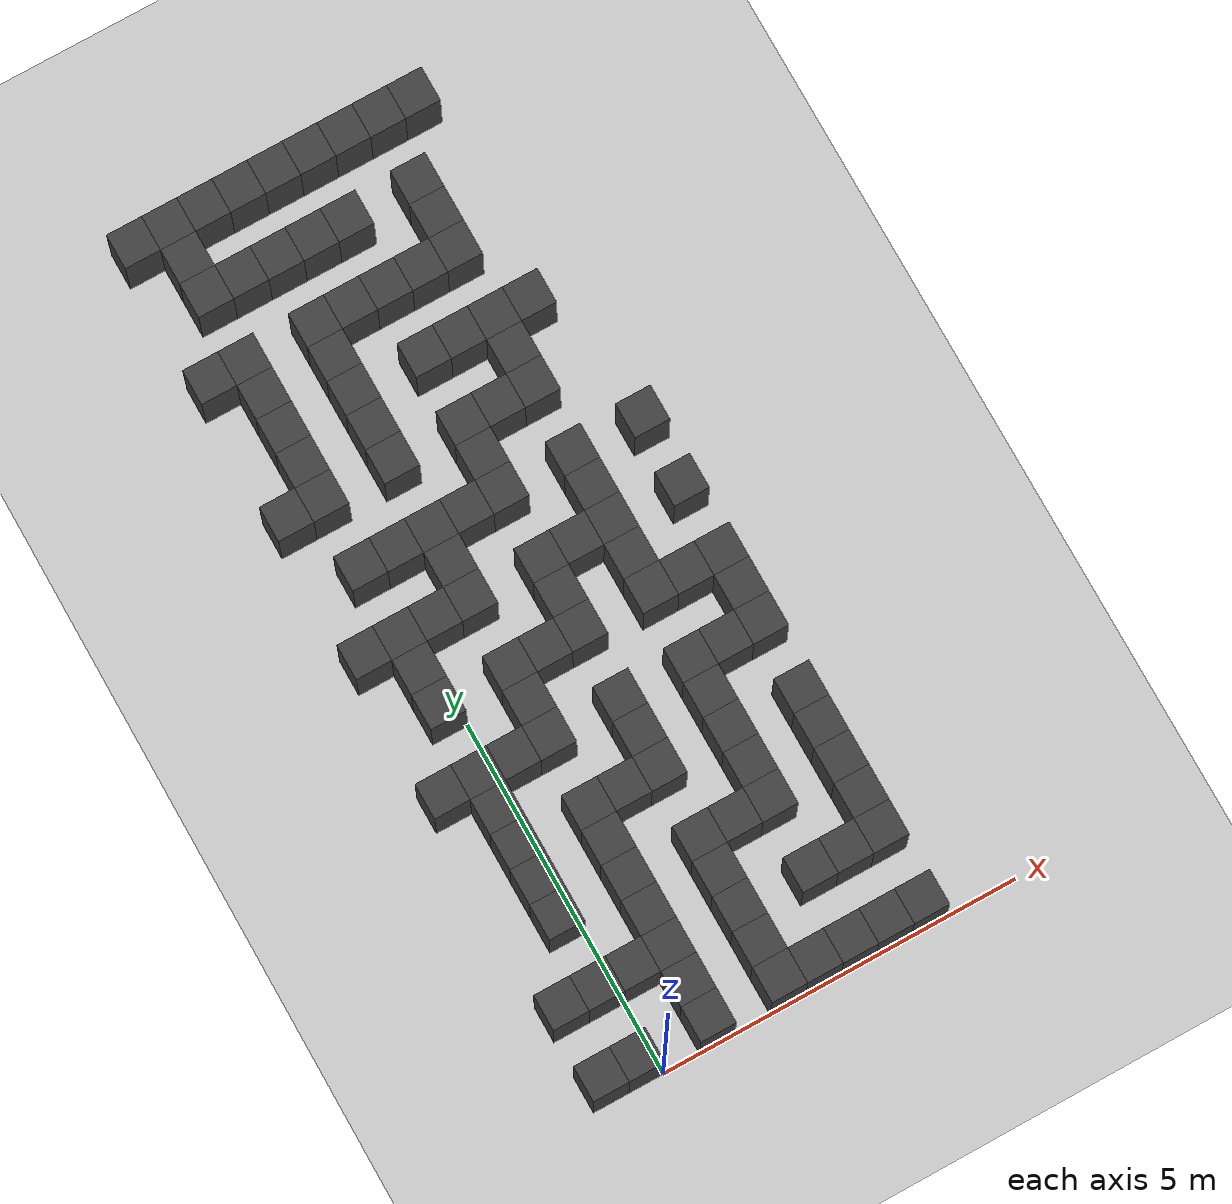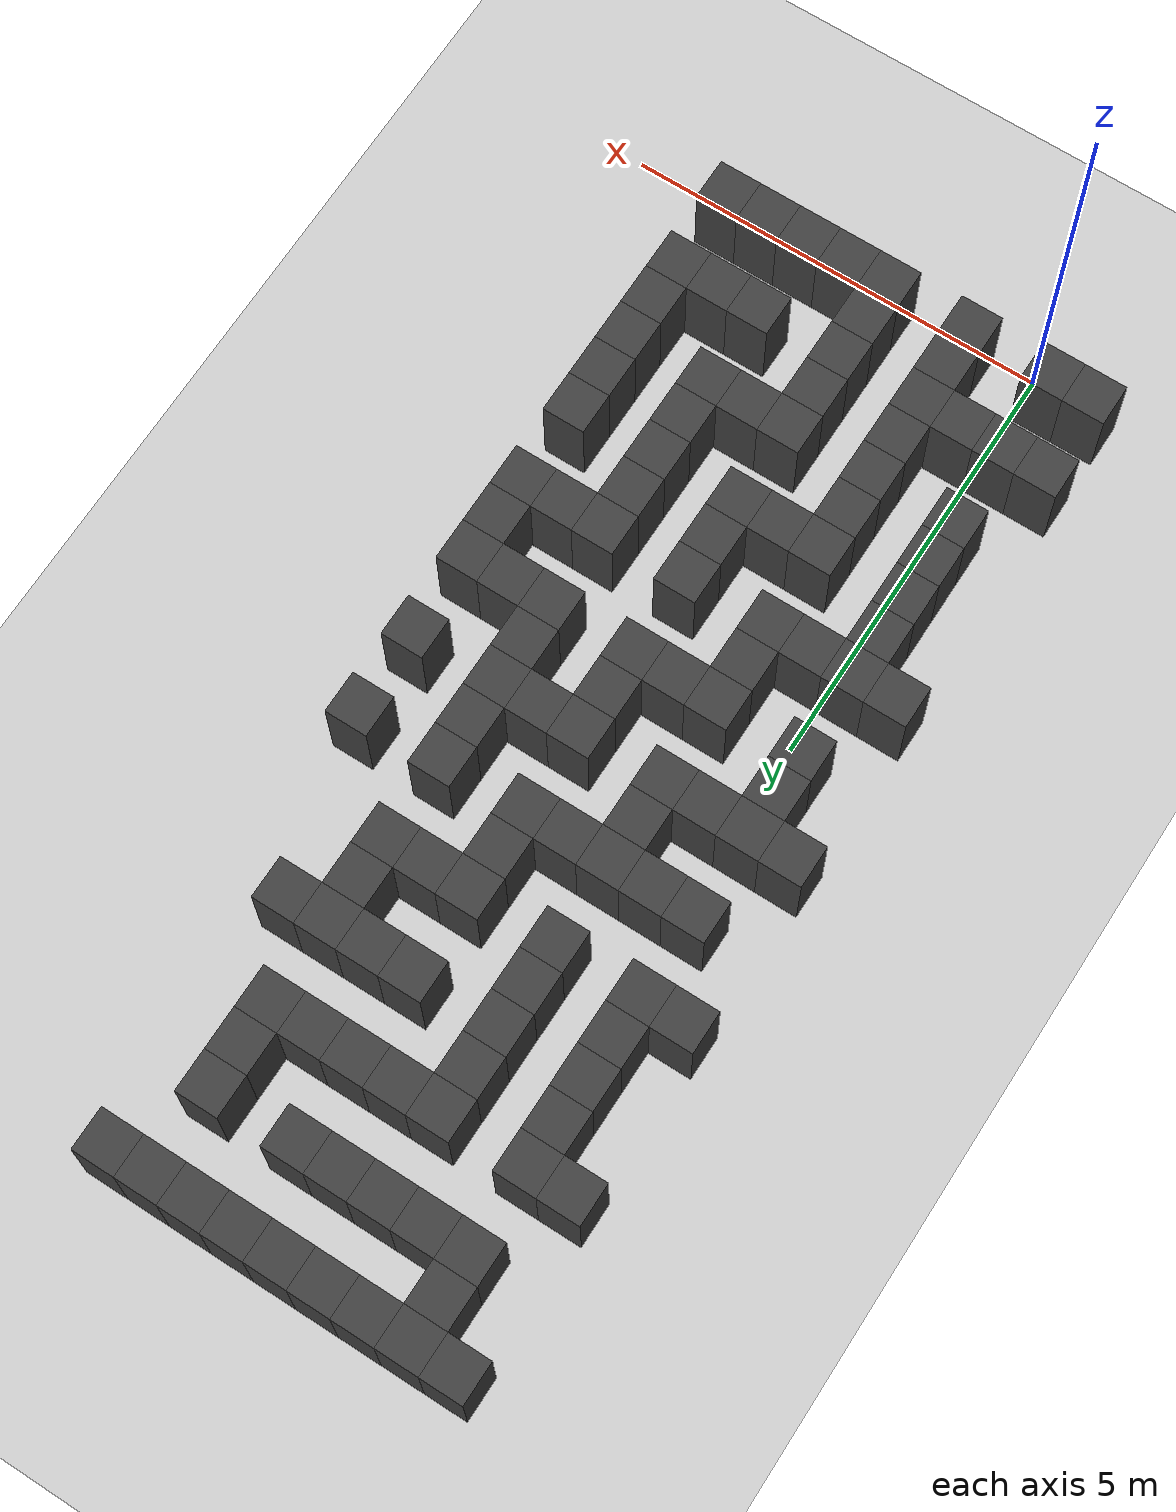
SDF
<sdf version="1.7">
 <world name="map_18505">
  <model name="ground_plane">
   <static>true</static>
   <link name="link">
    <collision name="collision">
     <geometry><plane><normal>0 0 1</normal><size>200 200</size></plane></geometry>
    </collision>
    <visual name="visual">
     <geometry><plane><normal>0 0 1</normal><size>200 200</size></plane></geometry>
     <material><ambient>0.8 0.8 0.8 1</ambient><diffuse>0.8 0.8 0.8 1</diffuse></material>
    </visual>
   </link>
  </model>
  <model name="maze_environment">
   <static>true</static>
   <link name="wall_23">
    <pose>-0.750 12.250 0.500 0 0 0</pose>
    <collision name="col"><geometry><box><size>0.5 0.5 1.0</size></box></geometry></collision>
    <visual name="vis">
     <geometry><box><size>0.5 0.5 1.0</size></box></geometry>
     <material><ambient>0.15 0.15 0.15 1</ambient><diffuse>0.25 0.25 0.25 1</diffuse></material>
    </visual>
   </link>
   <link name="wall_24">
    <pose>-0.250 12.250 0.500 0 0 0</pose>
    <collision name="col"><geometry><box><size>0.5 0.5 1.0</size></box></geometry></collision>
    <visual name="vis">
     <geometry><box><size>0.5 0.5 1.0</size></box></geometry>
     <material><ambient>0.15 0.15 0.15 1</ambient><diffuse>0.25 0.25 0.25 1</diffuse></material>
    </visual>
   </link>
   <link name="wall_25">
    <pose>0.250 12.250 0.500 0 0 0</pose>
    <collision name="col"><geometry><box><size>0.5 0.5 1.0</size></box></geometry></collision>
    <visual name="vis">
     <geometry><box><size>0.5 0.5 1.0</size></box></geometry>
     <material><ambient>0.15 0.15 0.15 1</ambient><diffuse>0.25 0.25 0.25 1</diffuse></material>
    </visual>
   </link>
   <link name="wall_26">
    <pose>0.750 12.250 0.500 0 0 0</pose>
    <collision name="col"><geometry><box><size>0.5 0.5 1.0</size></box></geometry></collision>
    <visual name="vis">
     <geometry><box><size>0.5 0.5 1.0</size></box></geometry>
     <material><ambient>0.15 0.15 0.15 1</ambient><diffuse>0.25 0.25 0.25 1</diffuse></material>
    </visual>
   </link>
   <link name="wall_27">
    <pose>1.250 12.250 0.500 0 0 0</pose>
    <collision name="col"><geometry><box><size>0.5 0.5 1.0</size></box></geometry></collision>
    <visual name="vis">
     <geometry><box><size>0.5 0.5 1.0</size></box></geometry>
     <material><ambient>0.15 0.15 0.15 1</ambient><diffuse>0.25 0.25 0.25 1</diffuse></material>
    </visual>
   </link>
   <link name="wall_28">
    <pose>1.750 12.250 0.500 0 0 0</pose>
    <collision name="col"><geometry><box><size>0.5 0.5 1.0</size></box></geometry></collision>
    <visual name="vis">
     <geometry><box><size>0.5 0.5 1.0</size></box></geometry>
     <material><ambient>0.15 0.15 0.15 1</ambient><diffuse>0.25 0.25 0.25 1</diffuse></material>
    </visual>
   </link>
   <link name="wall_29">
    <pose>2.250 12.250 0.500 0 0 0</pose>
    <collision name="col"><geometry><box><size>0.5 0.5 1.0</size></box></geometry></collision>
    <visual name="vis">
     <geometry><box><size>0.5 0.5 1.0</size></box></geometry>
     <material><ambient>0.15 0.15 0.15 1</ambient><diffuse>0.25 0.25 0.25 1</diffuse></material>
    </visual>
   </link>
   <link name="wall_30">
    <pose>2.750 12.250 0.500 0 0 0</pose>
    <collision name="col"><geometry><box><size>0.5 0.5 1.0</size></box></geometry></collision>
    <visual name="vis">
     <geometry><box><size>0.5 0.5 1.0</size></box></geometry>
     <material><ambient>0.15 0.15 0.15 1</ambient><diffuse>0.25 0.25 0.25 1</diffuse></material>
    </visual>
   </link>
   <link name="wall_31">
    <pose>3.250 12.250 0.500 0 0 0</pose>
    <collision name="col"><geometry><box><size>0.5 0.5 1.0</size></box></geometry></collision>
    <visual name="vis">
     <geometry><box><size>0.5 0.5 1.0</size></box></geometry>
     <material><ambient>0.15 0.15 0.15 1</ambient><diffuse>0.25 0.25 0.25 1</diffuse></material>
    </visual>
   </link>
   <link name="wall_54">
    <pose>-0.250 11.750 0.500 0 0 0</pose>
    <collision name="col"><geometry><box><size>0.5 0.5 1.0</size></box></geometry></collision>
    <visual name="vis">
     <geometry><box><size>0.5 0.5 1.0</size></box></geometry>
     <material><ambient>0.15 0.15 0.15 1</ambient><diffuse>0.25 0.25 0.25 1</diffuse></material>
    </visual>
   </link>
   <link name="wall_75">
    <pose>-0.250 11.250 0.500 0 0 0</pose>
    <collision name="col"><geometry><box><size>0.5 0.5 1.0</size></box></geometry></collision>
    <visual name="vis">
     <geometry><box><size>0.5 0.5 1.0</size></box></geometry>
     <material><ambient>0.15 0.15 0.15 1</ambient><diffuse>0.25 0.25 0.25 1</diffuse></material>
    </visual>
   </link>
   <link name="wall_76">
    <pose>0.250 11.250 0.500 0 0 0</pose>
    <collision name="col"><geometry><box><size>0.5 0.5 1.0</size></box></geometry></collision>
    <visual name="vis">
     <geometry><box><size>0.5 0.5 1.0</size></box></geometry>
     <material><ambient>0.15 0.15 0.15 1</ambient><diffuse>0.25 0.25 0.25 1</diffuse></material>
    </visual>
   </link>
   <link name="wall_77">
    <pose>0.750 11.250 0.500 0 0 0</pose>
    <collision name="col"><geometry><box><size>0.5 0.5 1.0</size></box></geometry></collision>
    <visual name="vis">
     <geometry><box><size>0.5 0.5 1.0</size></box></geometry>
     <material><ambient>0.15 0.15 0.15 1</ambient><diffuse>0.25 0.25 0.25 1</diffuse></material>
    </visual>
   </link>
   <link name="wall_78">
    <pose>1.250 11.250 0.500 0 0 0</pose>
    <collision name="col"><geometry><box><size>0.5 0.5 1.0</size></box></geometry></collision>
    <visual name="vis">
     <geometry><box><size>0.5 0.5 1.0</size></box></geometry>
     <material><ambient>0.15 0.15 0.15 1</ambient><diffuse>0.25 0.25 0.25 1</diffuse></material>
    </visual>
   </link>
   <link name="wall_79">
    <pose>1.750 11.250 0.500 0 0 0</pose>
    <collision name="col"><geometry><box><size>0.5 0.5 1.0</size></box></geometry></collision>
    <visual name="vis">
     <geometry><box><size>0.5 0.5 1.0</size></box></geometry>
     <material><ambient>0.15 0.15 0.15 1</ambient><diffuse>0.25 0.25 0.25 1</diffuse></material>
    </visual>
   </link>
   <link name="wall_80">
    <pose>2.750 11.250 0.500 0 0 0</pose>
    <collision name="col"><geometry><box><size>0.5 0.5 1.0</size></box></geometry></collision>
    <visual name="vis">
     <geometry><box><size>0.5 0.5 1.0</size></box></geometry>
     <material><ambient>0.15 0.15 0.15 1</ambient><diffuse>0.25 0.25 0.25 1</diffuse></material>
    </visual>
   </link>
   <link name="wall_102">
    <pose>2.750 10.750 0.500 0 0 0</pose>
    <collision name="col"><geometry><box><size>0.5 0.5 1.0</size></box></geometry></collision>
    <visual name="vis">
     <geometry><box><size>0.5 0.5 1.0</size></box></geometry>
     <material><ambient>0.15 0.15 0.15 1</ambient><diffuse>0.25 0.25 0.25 1</diffuse></material>
    </visual>
   </link>
   <link name="wall_125">
    <pose>-0.750 10.250 0.500 0 0 0</pose>
    <collision name="col"><geometry><box><size>0.5 0.5 1.0</size></box></geometry></collision>
    <visual name="vis">
     <geometry><box><size>0.5 0.5 1.0</size></box></geometry>
     <material><ambient>0.15 0.15 0.15 1</ambient><diffuse>0.25 0.25 0.25 1</diffuse></material>
    </visual>
   </link>
   <link name="wall_126">
    <pose>-0.250 10.250 0.500 0 0 0</pose>
    <collision name="col"><geometry><box><size>0.5 0.5 1.0</size></box></geometry></collision>
    <visual name="vis">
     <geometry><box><size>0.5 0.5 1.0</size></box></geometry>
     <material><ambient>0.15 0.15 0.15 1</ambient><diffuse>0.25 0.25 0.25 1</diffuse></material>
    </visual>
   </link>
   <link name="wall_127">
    <pose>0.750 10.250 0.500 0 0 0</pose>
    <collision name="col"><geometry><box><size>0.5 0.5 1.0</size></box></geometry></collision>
    <visual name="vis">
     <geometry><box><size>0.5 0.5 1.0</size></box></geometry>
     <material><ambient>0.15 0.15 0.15 1</ambient><diffuse>0.25 0.25 0.25 1</diffuse></material>
    </visual>
   </link>
   <link name="wall_128">
    <pose>1.250 10.250 0.500 0 0 0</pose>
    <collision name="col"><geometry><box><size>0.5 0.5 1.0</size></box></geometry></collision>
    <visual name="vis">
     <geometry><box><size>0.5 0.5 1.0</size></box></geometry>
     <material><ambient>0.15 0.15 0.15 1</ambient><diffuse>0.25 0.25 0.25 1</diffuse></material>
    </visual>
   </link>
   <link name="wall_129">
    <pose>1.750 10.250 0.500 0 0 0</pose>
    <collision name="col"><geometry><box><size>0.5 0.5 1.0</size></box></geometry></collision>
    <visual name="vis">
     <geometry><box><size>0.5 0.5 1.0</size></box></geometry>
     <material><ambient>0.15 0.15 0.15 1</ambient><diffuse>0.25 0.25 0.25 1</diffuse></material>
    </visual>
   </link>
   <link name="wall_130">
    <pose>2.250 10.250 0.500 0 0 0</pose>
    <collision name="col"><geometry><box><size>0.5 0.5 1.0</size></box></geometry></collision>
    <visual name="vis">
     <geometry><box><size>0.5 0.5 1.0</size></box></geometry>
     <material><ambient>0.15 0.15 0.15 1</ambient><diffuse>0.25 0.25 0.25 1</diffuse></material>
    </visual>
   </link>
   <link name="wall_131">
    <pose>2.750 10.250 0.500 0 0 0</pose>
    <collision name="col"><geometry><box><size>0.5 0.5 1.0</size></box></geometry></collision>
    <visual name="vis">
     <geometry><box><size>0.5 0.5 1.0</size></box></geometry>
     <material><ambient>0.15 0.15 0.15 1</ambient><diffuse>0.25 0.25 0.25 1</diffuse></material>
    </visual>
   </link>
   <link name="wall_151">
    <pose>-0.250 9.750 0.500 0 0 0</pose>
    <collision name="col"><geometry><box><size>0.5 0.5 1.0</size></box></geometry></collision>
    <visual name="vis">
     <geometry><box><size>0.5 0.5 1.0</size></box></geometry>
     <material><ambient>0.15 0.15 0.15 1</ambient><diffuse>0.25 0.25 0.25 1</diffuse></material>
    </visual>
   </link>
   <link name="wall_152">
    <pose>0.750 9.750 0.500 0 0 0</pose>
    <collision name="col"><geometry><box><size>0.5 0.5 1.0</size></box></geometry></collision>
    <visual name="vis">
     <geometry><box><size>0.5 0.5 1.0</size></box></geometry>
     <material><ambient>0.15 0.15 0.15 1</ambient><diffuse>0.25 0.25 0.25 1</diffuse></material>
    </visual>
   </link>
   <link name="wall_174">
    <pose>-0.250 9.250 0.500 0 0 0</pose>
    <collision name="col"><geometry><box><size>0.5 0.5 1.0</size></box></geometry></collision>
    <visual name="vis">
     <geometry><box><size>0.5 0.5 1.0</size></box></geometry>
     <material><ambient>0.15 0.15 0.15 1</ambient><diffuse>0.25 0.25 0.25 1</diffuse></material>
    </visual>
   </link>
   <link name="wall_175">
    <pose>0.750 9.250 0.500 0 0 0</pose>
    <collision name="col"><geometry><box><size>0.5 0.5 1.0</size></box></geometry></collision>
    <visual name="vis">
     <geometry><box><size>0.5 0.5 1.0</size></box></geometry>
     <material><ambient>0.15 0.15 0.15 1</ambient><diffuse>0.25 0.25 0.25 1</diffuse></material>
    </visual>
   </link>
   <link name="wall_176">
    <pose>1.750 9.250 0.500 0 0 0</pose>
    <collision name="col"><geometry><box><size>0.5 0.5 1.0</size></box></geometry></collision>
    <visual name="vis">
     <geometry><box><size>0.5 0.5 1.0</size></box></geometry>
     <material><ambient>0.15 0.15 0.15 1</ambient><diffuse>0.25 0.25 0.25 1</diffuse></material>
    </visual>
   </link>
   <link name="wall_177">
    <pose>2.250 9.250 0.500 0 0 0</pose>
    <collision name="col"><geometry><box><size>0.5 0.5 1.0</size></box></geometry></collision>
    <visual name="vis">
     <geometry><box><size>0.5 0.5 1.0</size></box></geometry>
     <material><ambient>0.15 0.15 0.15 1</ambient><diffuse>0.25 0.25 0.25 1</diffuse></material>
    </visual>
   </link>
   <link name="wall_178">
    <pose>2.750 9.250 0.500 0 0 0</pose>
    <collision name="col"><geometry><box><size>0.5 0.5 1.0</size></box></geometry></collision>
    <visual name="vis">
     <geometry><box><size>0.5 0.5 1.0</size></box></geometry>
     <material><ambient>0.15 0.15 0.15 1</ambient><diffuse>0.25 0.25 0.25 1</diffuse></material>
    </visual>
   </link>
   <link name="wall_179">
    <pose>3.250 9.250 0.500 0 0 0</pose>
    <collision name="col"><geometry><box><size>0.5 0.5 1.0</size></box></geometry></collision>
    <visual name="vis">
     <geometry><box><size>0.5 0.5 1.0</size></box></geometry>
     <material><ambient>0.15 0.15 0.15 1</ambient><diffuse>0.25 0.25 0.25 1</diffuse></material>
    </visual>
   </link>
   <link name="wall_201">
    <pose>-0.250 8.750 0.500 0 0 0</pose>
    <collision name="col"><geometry><box><size>0.5 0.5 1.0</size></box></geometry></collision>
    <visual name="vis">
     <geometry><box><size>0.5 0.5 1.0</size></box></geometry>
     <material><ambient>0.15 0.15 0.15 1</ambient><diffuse>0.25 0.25 0.25 1</diffuse></material>
    </visual>
   </link>
   <link name="wall_202">
    <pose>0.750 8.750 0.500 0 0 0</pose>
    <collision name="col"><geometry><box><size>0.5 0.5 1.0</size></box></geometry></collision>
    <visual name="vis">
     <geometry><box><size>0.5 0.5 1.0</size></box></geometry>
     <material><ambient>0.15 0.15 0.15 1</ambient><diffuse>0.25 0.25 0.25 1</diffuse></material>
    </visual>
   </link>
   <link name="wall_203">
    <pose>2.750 8.750 0.500 0 0 0</pose>
    <collision name="col"><geometry><box><size>0.5 0.5 1.0</size></box></geometry></collision>
    <visual name="vis">
     <geometry><box><size>0.5 0.5 1.0</size></box></geometry>
     <material><ambient>0.15 0.15 0.15 1</ambient><diffuse>0.25 0.25 0.25 1</diffuse></material>
    </visual>
   </link>
   <link name="wall_224">
    <pose>-0.750 8.250 0.500 0 0 0</pose>
    <collision name="col"><geometry><box><size>0.5 0.5 1.0</size></box></geometry></collision>
    <visual name="vis">
     <geometry><box><size>0.5 0.5 1.0</size></box></geometry>
     <material><ambient>0.15 0.15 0.15 1</ambient><diffuse>0.25 0.25 0.25 1</diffuse></material>
    </visual>
   </link>
   <link name="wall_225">
    <pose>-0.250 8.250 0.500 0 0 0</pose>
    <collision name="col"><geometry><box><size>0.5 0.5 1.0</size></box></geometry></collision>
    <visual name="vis">
     <geometry><box><size>0.5 0.5 1.0</size></box></geometry>
     <material><ambient>0.15 0.15 0.15 1</ambient><diffuse>0.25 0.25 0.25 1</diffuse></material>
    </visual>
   </link>
   <link name="wall_226">
    <pose>0.750 8.250 0.500 0 0 0</pose>
    <collision name="col"><geometry><box><size>0.5 0.5 1.0</size></box></geometry></collision>
    <visual name="vis">
     <geometry><box><size>0.5 0.5 1.0</size></box></geometry>
     <material><ambient>0.15 0.15 0.15 1</ambient><diffuse>0.25 0.25 0.25 1</diffuse></material>
    </visual>
   </link>
   <link name="wall_227">
    <pose>1.750 8.250 0.500 0 0 0</pose>
    <collision name="col"><geometry><box><size>0.5 0.5 1.0</size></box></geometry></collision>
    <visual name="vis">
     <geometry><box><size>0.5 0.5 1.0</size></box></geometry>
     <material><ambient>0.15 0.15 0.15 1</ambient><diffuse>0.25 0.25 0.25 1</diffuse></material>
    </visual>
   </link>
   <link name="wall_228">
    <pose>2.250 8.250 0.500 0 0 0</pose>
    <collision name="col"><geometry><box><size>0.5 0.5 1.0</size></box></geometry></collision>
    <visual name="vis">
     <geometry><box><size>0.5 0.5 1.0</size></box></geometry>
     <material><ambient>0.15 0.15 0.15 1</ambient><diffuse>0.25 0.25 0.25 1</diffuse></material>
    </visual>
   </link>
   <link name="wall_229">
    <pose>2.750 8.250 0.500 0 0 0</pose>
    <collision name="col"><geometry><box><size>0.5 0.5 1.0</size></box></geometry></collision>
    <visual name="vis">
     <geometry><box><size>0.5 0.5 1.0</size></box></geometry>
     <material><ambient>0.15 0.15 0.15 1</ambient><diffuse>0.25 0.25 0.25 1</diffuse></material>
    </visual>
   </link>
   <link name="wall_249">
    <pose>1.750 7.750 0.500 0 0 0</pose>
    <collision name="col"><geometry><box><size>0.5 0.5 1.0</size></box></geometry></collision>
    <visual name="vis">
     <geometry><box><size>0.5 0.5 1.0</size></box></geometry>
     <material><ambient>0.15 0.15 0.15 1</ambient><diffuse>0.25 0.25 0.25 1</diffuse></material>
    </visual>
   </link>
   <link name="wall_274">
    <pose>-0.250 7.250 0.500 0 0 0</pose>
    <collision name="col"><geometry><box><size>0.5 0.5 1.0</size></box></geometry></collision>
    <visual name="vis">
     <geometry><box><size>0.5 0.5 1.0</size></box></geometry>
     <material><ambient>0.15 0.15 0.15 1</ambient><diffuse>0.25 0.25 0.25 1</diffuse></material>
    </visual>
   </link>
   <link name="wall_275">
    <pose>0.250 7.250 0.500 0 0 0</pose>
    <collision name="col"><geometry><box><size>0.5 0.5 1.0</size></box></geometry></collision>
    <visual name="vis">
     <geometry><box><size>0.5 0.5 1.0</size></box></geometry>
     <material><ambient>0.15 0.15 0.15 1</ambient><diffuse>0.25 0.25 0.25 1</diffuse></material>
    </visual>
   </link>
   <link name="wall_276">
    <pose>0.750 7.250 0.500 0 0 0</pose>
    <collision name="col"><geometry><box><size>0.5 0.5 1.0</size></box></geometry></collision>
    <visual name="vis">
     <geometry><box><size>0.5 0.5 1.0</size></box></geometry>
     <material><ambient>0.15 0.15 0.15 1</ambient><diffuse>0.25 0.25 0.25 1</diffuse></material>
    </visual>
   </link>
   <link name="wall_277">
    <pose>1.250 7.250 0.500 0 0 0</pose>
    <collision name="col"><geometry><box><size>0.5 0.5 1.0</size></box></geometry></collision>
    <visual name="vis">
     <geometry><box><size>0.5 0.5 1.0</size></box></geometry>
     <material><ambient>0.15 0.15 0.15 1</ambient><diffuse>0.25 0.25 0.25 1</diffuse></material>
    </visual>
   </link>
   <link name="wall_278">
    <pose>1.750 7.250 0.500 0 0 0</pose>
    <collision name="col"><geometry><box><size>0.5 0.5 1.0</size></box></geometry></collision>
    <visual name="vis">
     <geometry><box><size>0.5 0.5 1.0</size></box></geometry>
     <material><ambient>0.15 0.15 0.15 1</ambient><diffuse>0.25 0.25 0.25 1</diffuse></material>
    </visual>
   </link>
   <link name="wall_279">
    <pose>2.750 7.250 0.500 0 0 0</pose>
    <collision name="col"><geometry><box><size>0.5 0.5 1.0</size></box></geometry></collision>
    <visual name="vis">
     <geometry><box><size>0.5 0.5 1.0</size></box></geometry>
     <material><ambient>0.15 0.15 0.15 1</ambient><diffuse>0.25 0.25 0.25 1</diffuse></material>
    </visual>
   </link>
   <link name="wall_280">
    <pose>3.750 7.250 0.500 0 0 0</pose>
    <collision name="col"><geometry><box><size>0.5 0.5 1.0</size></box></geometry></collision>
    <visual name="vis">
     <geometry><box><size>0.5 0.5 1.0</size></box></geometry>
     <material><ambient>0.15 0.15 0.15 1</ambient><diffuse>0.25 0.25 0.25 1</diffuse></material>
    </visual>
   </link>
   <link name="wall_298">
    <pose>0.750 6.750 0.500 0 0 0</pose>
    <collision name="col"><geometry><box><size>0.5 0.5 1.0</size></box></geometry></collision>
    <visual name="vis">
     <geometry><box><size>0.5 0.5 1.0</size></box></geometry>
     <material><ambient>0.15 0.15 0.15 1</ambient><diffuse>0.25 0.25 0.25 1</diffuse></material>
    </visual>
   </link>
   <link name="wall_299">
    <pose>2.750 6.750 0.500 0 0 0</pose>
    <collision name="col"><geometry><box><size>0.5 0.5 1.0</size></box></geometry></collision>
    <visual name="vis">
     <geometry><box><size>0.5 0.5 1.0</size></box></geometry>
     <material><ambient>0.15 0.15 0.15 1</ambient><diffuse>0.25 0.25 0.25 1</diffuse></material>
    </visual>
   </link>
   <link name="wall_323">
    <pose>-0.750 6.250 0.500 0 0 0</pose>
    <collision name="col"><geometry><box><size>0.5 0.5 1.0</size></box></geometry></collision>
    <visual name="vis">
     <geometry><box><size>0.5 0.5 1.0</size></box></geometry>
     <material><ambient>0.15 0.15 0.15 1</ambient><diffuse>0.25 0.25 0.25 1</diffuse></material>
    </visual>
   </link>
   <link name="wall_324">
    <pose>-0.250 6.250 0.500 0 0 0</pose>
    <collision name="col"><geometry><box><size>0.5 0.5 1.0</size></box></geometry></collision>
    <visual name="vis">
     <geometry><box><size>0.5 0.5 1.0</size></box></geometry>
     <material><ambient>0.15 0.15 0.15 1</ambient><diffuse>0.25 0.25 0.25 1</diffuse></material>
    </visual>
   </link>
   <link name="wall_325">
    <pose>0.250 6.250 0.500 0 0 0</pose>
    <collision name="col"><geometry><box><size>0.5 0.5 1.0</size></box></geometry></collision>
    <visual name="vis">
     <geometry><box><size>0.5 0.5 1.0</size></box></geometry>
     <material><ambient>0.15 0.15 0.15 1</ambient><diffuse>0.25 0.25 0.25 1</diffuse></material>
    </visual>
   </link>
   <link name="wall_326">
    <pose>0.750 6.250 0.500 0 0 0</pose>
    <collision name="col"><geometry><box><size>0.5 0.5 1.0</size></box></geometry></collision>
    <visual name="vis">
     <geometry><box><size>0.5 0.5 1.0</size></box></geometry>
     <material><ambient>0.15 0.15 0.15 1</ambient><diffuse>0.25 0.25 0.25 1</diffuse></material>
    </visual>
   </link>
   <link name="wall_327">
    <pose>1.750 6.250 0.500 0 0 0</pose>
    <collision name="col"><geometry><box><size>0.5 0.5 1.0</size></box></geometry></collision>
    <visual name="vis">
     <geometry><box><size>0.5 0.5 1.0</size></box></geometry>
     <material><ambient>0.15 0.15 0.15 1</ambient><diffuse>0.25 0.25 0.25 1</diffuse></material>
    </visual>
   </link>
   <link name="wall_328">
    <pose>2.250 6.250 0.500 0 0 0</pose>
    <collision name="col"><geometry><box><size>0.5 0.5 1.0</size></box></geometry></collision>
    <visual name="vis">
     <geometry><box><size>0.5 0.5 1.0</size></box></geometry>
     <material><ambient>0.15 0.15 0.15 1</ambient><diffuse>0.25 0.25 0.25 1</diffuse></material>
    </visual>
   </link>
   <link name="wall_329">
    <pose>2.750 6.250 0.500 0 0 0</pose>
    <collision name="col"><geometry><box><size>0.5 0.5 1.0</size></box></geometry></collision>
    <visual name="vis">
     <geometry><box><size>0.5 0.5 1.0</size></box></geometry>
     <material><ambient>0.15 0.15 0.15 1</ambient><diffuse>0.25 0.25 0.25 1</diffuse></material>
    </visual>
   </link>
   <link name="wall_330">
    <pose>3.750 6.250 0.500 0 0 0</pose>
    <collision name="col"><geometry><box><size>0.5 0.5 1.0</size></box></geometry></collision>
    <visual name="vis">
     <geometry><box><size>0.5 0.5 1.0</size></box></geometry>
     <material><ambient>0.15 0.15 0.15 1</ambient><diffuse>0.25 0.25 0.25 1</diffuse></material>
    </visual>
   </link>
   <link name="wall_349">
    <pose>-0.250 5.750 0.500 0 0 0</pose>
    <collision name="col"><geometry><box><size>0.5 0.5 1.0</size></box></geometry></collision>
    <visual name="vis">
     <geometry><box><size>0.5 0.5 1.0</size></box></geometry>
     <material><ambient>0.15 0.15 0.15 1</ambient><diffuse>0.25 0.25 0.25 1</diffuse></material>
    </visual>
   </link>
   <link name="wall_350">
    <pose>1.750 5.750 0.500 0 0 0</pose>
    <collision name="col"><geometry><box><size>0.5 0.5 1.0</size></box></geometry></collision>
    <visual name="vis">
     <geometry><box><size>0.5 0.5 1.0</size></box></geometry>
     <material><ambient>0.15 0.15 0.15 1</ambient><diffuse>0.25 0.25 0.25 1</diffuse></material>
    </visual>
   </link>
   <link name="wall_351">
    <pose>2.750 5.750 0.500 0 0 0</pose>
    <collision name="col"><geometry><box><size>0.5 0.5 1.0</size></box></geometry></collision>
    <visual name="vis">
     <geometry><box><size>0.5 0.5 1.0</size></box></geometry>
     <material><ambient>0.15 0.15 0.15 1</ambient><diffuse>0.25 0.25 0.25 1</diffuse></material>
    </visual>
   </link>
   <link name="wall_376">
    <pose>-0.250 5.250 0.500 0 0 0</pose>
    <collision name="col"><geometry><box><size>0.5 0.5 1.0</size></box></geometry></collision>
    <visual name="vis">
     <geometry><box><size>0.5 0.5 1.0</size></box></geometry>
     <material><ambient>0.15 0.15 0.15 1</ambient><diffuse>0.25 0.25 0.25 1</diffuse></material>
    </visual>
   </link>
   <link name="wall_377">
    <pose>0.750 5.250 0.500 0 0 0</pose>
    <collision name="col"><geometry><box><size>0.5 0.5 1.0</size></box></geometry></collision>
    <visual name="vis">
     <geometry><box><size>0.5 0.5 1.0</size></box></geometry>
     <material><ambient>0.15 0.15 0.15 1</ambient><diffuse>0.25 0.25 0.25 1</diffuse></material>
    </visual>
   </link>
   <link name="wall_378">
    <pose>1.250 5.250 0.500 0 0 0</pose>
    <collision name="col"><geometry><box><size>0.5 0.5 1.0</size></box></geometry></collision>
    <visual name="vis">
     <geometry><box><size>0.5 0.5 1.0</size></box></geometry>
     <material><ambient>0.15 0.15 0.15 1</ambient><diffuse>0.25 0.25 0.25 1</diffuse></material>
    </visual>
   </link>
   <link name="wall_379">
    <pose>1.750 5.250 0.500 0 0 0</pose>
    <collision name="col"><geometry><box><size>0.5 0.5 1.0</size></box></geometry></collision>
    <visual name="vis">
     <geometry><box><size>0.5 0.5 1.0</size></box></geometry>
     <material><ambient>0.15 0.15 0.15 1</ambient><diffuse>0.25 0.25 0.25 1</diffuse></material>
    </visual>
   </link>
   <link name="wall_380">
    <pose>2.750 5.250 0.500 0 0 0</pose>
    <collision name="col"><geometry><box><size>0.5 0.5 1.0</size></box></geometry></collision>
    <visual name="vis">
     <geometry><box><size>0.5 0.5 1.0</size></box></geometry>
     <material><ambient>0.15 0.15 0.15 1</ambient><diffuse>0.25 0.25 0.25 1</diffuse></material>
    </visual>
   </link>
   <link name="wall_381">
    <pose>3.250 5.250 0.500 0 0 0</pose>
    <collision name="col"><geometry><box><size>0.5 0.5 1.0</size></box></geometry></collision>
    <visual name="vis">
     <geometry><box><size>0.5 0.5 1.0</size></box></geometry>
     <material><ambient>0.15 0.15 0.15 1</ambient><diffuse>0.25 0.25 0.25 1</diffuse></material>
    </visual>
   </link>
   <link name="wall_382">
    <pose>3.750 5.250 0.500 0 0 0</pose>
    <collision name="col"><geometry><box><size>0.5 0.5 1.0</size></box></geometry></collision>
    <visual name="vis">
     <geometry><box><size>0.5 0.5 1.0</size></box></geometry>
     <material><ambient>0.15 0.15 0.15 1</ambient><diffuse>0.25 0.25 0.25 1</diffuse></material>
    </visual>
   </link>
   <link name="wall_402">
    <pose>0.750 4.750 0.500 0 0 0</pose>
    <collision name="col"><geometry><box><size>0.5 0.5 1.0</size></box></geometry></collision>
    <visual name="vis">
     <geometry><box><size>0.5 0.5 1.0</size></box></geometry>
     <material><ambient>0.15 0.15 0.15 1</ambient><diffuse>0.25 0.25 0.25 1</diffuse></material>
    </visual>
   </link>
   <link name="wall_403">
    <pose>3.750 4.750 0.500 0 0 0</pose>
    <collision name="col"><geometry><box><size>0.5 0.5 1.0</size></box></geometry></collision>
    <visual name="vis">
     <geometry><box><size>0.5 0.5 1.0</size></box></geometry>
     <material><ambient>0.15 0.15 0.15 1</ambient><diffuse>0.25 0.25 0.25 1</diffuse></material>
    </visual>
   </link>
   <link name="wall_427">
    <pose>-0.750 4.250 0.500 0 0 0</pose>
    <collision name="col"><geometry><box><size>0.5 0.5 1.0</size></box></geometry></collision>
    <visual name="vis">
     <geometry><box><size>0.5 0.5 1.0</size></box></geometry>
     <material><ambient>0.15 0.15 0.15 1</ambient><diffuse>0.25 0.25 0.25 1</diffuse></material>
    </visual>
   </link>
   <link name="wall_428">
    <pose>-0.250 4.250 0.500 0 0 0</pose>
    <collision name="col"><geometry><box><size>0.5 0.5 1.0</size></box></geometry></collision>
    <visual name="vis">
     <geometry><box><size>0.5 0.5 1.0</size></box></geometry>
     <material><ambient>0.15 0.15 0.15 1</ambient><diffuse>0.25 0.25 0.25 1</diffuse></material>
    </visual>
   </link>
   <link name="wall_429">
    <pose>0.250 4.250 0.500 0 0 0</pose>
    <collision name="col"><geometry><box><size>0.5 0.5 1.0</size></box></geometry></collision>
    <visual name="vis">
     <geometry><box><size>0.5 0.5 1.0</size></box></geometry>
     <material><ambient>0.15 0.15 0.15 1</ambient><diffuse>0.25 0.25 0.25 1</diffuse></material>
    </visual>
   </link>
   <link name="wall_430">
    <pose>0.750 4.250 0.500 0 0 0</pose>
    <collision name="col"><geometry><box><size>0.5 0.5 1.0</size></box></geometry></collision>
    <visual name="vis">
     <geometry><box><size>0.5 0.5 1.0</size></box></geometry>
     <material><ambient>0.15 0.15 0.15 1</ambient><diffuse>0.25 0.25 0.25 1</diffuse></material>
    </visual>
   </link>
   <link name="wall_431">
    <pose>1.750 4.250 0.500 0 0 0</pose>
    <collision name="col"><geometry><box><size>0.5 0.5 1.0</size></box></geometry></collision>
    <visual name="vis">
     <geometry><box><size>0.5 0.5 1.0</size></box></geometry>
     <material><ambient>0.15 0.15 0.15 1</ambient><diffuse>0.25 0.25 0.25 1</diffuse></material>
    </visual>
   </link>
   <link name="wall_432">
    <pose>2.750 4.250 0.500 0 0 0</pose>
    <collision name="col"><geometry><box><size>0.5 0.5 1.0</size></box></geometry></collision>
    <visual name="vis">
     <geometry><box><size>0.5 0.5 1.0</size></box></geometry>
     <material><ambient>0.15 0.15 0.15 1</ambient><diffuse>0.25 0.25 0.25 1</diffuse></material>
    </visual>
   </link>
   <link name="wall_433">
    <pose>3.250 4.250 0.500 0 0 0</pose>
    <collision name="col"><geometry><box><size>0.5 0.5 1.0</size></box></geometry></collision>
    <visual name="vis">
     <geometry><box><size>0.5 0.5 1.0</size></box></geometry>
     <material><ambient>0.15 0.15 0.15 1</ambient><diffuse>0.25 0.25 0.25 1</diffuse></material>
    </visual>
   </link>
   <link name="wall_434">
    <pose>3.750 4.250 0.500 0 0 0</pose>
    <collision name="col"><geometry><box><size>0.5 0.5 1.0</size></box></geometry></collision>
    <visual name="vis">
     <geometry><box><size>0.5 0.5 1.0</size></box></geometry>
     <material><ambient>0.15 0.15 0.15 1</ambient><diffuse>0.25 0.25 0.25 1</diffuse></material>
    </visual>
   </link>
   <link name="wall_451">
    <pose>-0.250 3.750 0.500 0 0 0</pose>
    <collision name="col"><geometry><box><size>0.5 0.5 1.0</size></box></geometry></collision>
    <visual name="vis">
     <geometry><box><size>0.5 0.5 1.0</size></box></geometry>
     <material><ambient>0.15 0.15 0.15 1</ambient><diffuse>0.25 0.25 0.25 1</diffuse></material>
    </visual>
   </link>
   <link name="wall_452">
    <pose>1.750 3.750 0.500 0 0 0</pose>
    <collision name="col"><geometry><box><size>0.5 0.5 1.0</size></box></geometry></collision>
    <visual name="vis">
     <geometry><box><size>0.5 0.5 1.0</size></box></geometry>
     <material><ambient>0.15 0.15 0.15 1</ambient><diffuse>0.25 0.25 0.25 1</diffuse></material>
    </visual>
   </link>
   <link name="wall_453">
    <pose>2.750 3.750 0.500 0 0 0</pose>
    <collision name="col"><geometry><box><size>0.5 0.5 1.0</size></box></geometry></collision>
    <visual name="vis">
     <geometry><box><size>0.5 0.5 1.0</size></box></geometry>
     <material><ambient>0.15 0.15 0.15 1</ambient><diffuse>0.25 0.25 0.25 1</diffuse></material>
    </visual>
   </link>
   <link name="wall_478">
    <pose>-0.250 3.250 0.500 0 0 0</pose>
    <collision name="col"><geometry><box><size>0.5 0.5 1.0</size></box></geometry></collision>
    <visual name="vis">
     <geometry><box><size>0.5 0.5 1.0</size></box></geometry>
     <material><ambient>0.15 0.15 0.15 1</ambient><diffuse>0.25 0.25 0.25 1</diffuse></material>
    </visual>
   </link>
   <link name="wall_479">
    <pose>0.750 3.250 0.500 0 0 0</pose>
    <collision name="col"><geometry><box><size>0.5 0.5 1.0</size></box></geometry></collision>
    <visual name="vis">
     <geometry><box><size>0.5 0.5 1.0</size></box></geometry>
     <material><ambient>0.15 0.15 0.15 1</ambient><diffuse>0.25 0.25 0.25 1</diffuse></material>
    </visual>
   </link>
   <link name="wall_480">
    <pose>1.250 3.250 0.500 0 0 0</pose>
    <collision name="col"><geometry><box><size>0.5 0.5 1.0</size></box></geometry></collision>
    <visual name="vis">
     <geometry><box><size>0.5 0.5 1.0</size></box></geometry>
     <material><ambient>0.15 0.15 0.15 1</ambient><diffuse>0.25 0.25 0.25 1</diffuse></material>
    </visual>
   </link>
   <link name="wall_481">
    <pose>1.750 3.250 0.500 0 0 0</pose>
    <collision name="col"><geometry><box><size>0.5 0.5 1.0</size></box></geometry></collision>
    <visual name="vis">
     <geometry><box><size>0.5 0.5 1.0</size></box></geometry>
     <material><ambient>0.15 0.15 0.15 1</ambient><diffuse>0.25 0.25 0.25 1</diffuse></material>
    </visual>
   </link>
   <link name="wall_482">
    <pose>2.750 3.250 0.500 0 0 0</pose>
    <collision name="col"><geometry><box><size>0.5 0.5 1.0</size></box></geometry></collision>
    <visual name="vis">
     <geometry><box><size>0.5 0.5 1.0</size></box></geometry>
     <material><ambient>0.15 0.15 0.15 1</ambient><diffuse>0.25 0.25 0.25 1</diffuse></material>
    </visual>
   </link>
   <link name="wall_483">
    <pose>3.750 3.250 0.500 0 0 0</pose>
    <collision name="col"><geometry><box><size>0.5 0.5 1.0</size></box></geometry></collision>
    <visual name="vis">
     <geometry><box><size>0.5 0.5 1.0</size></box></geometry>
     <material><ambient>0.15 0.15 0.15 1</ambient><diffuse>0.25 0.25 0.25 1</diffuse></material>
    </visual>
   </link>
   <link name="wall_501">
    <pose>-0.250 2.750 0.500 0 0 0</pose>
    <collision name="col"><geometry><box><size>0.5 0.5 1.0</size></box></geometry></collision>
    <visual name="vis">
     <geometry><box><size>0.5 0.5 1.0</size></box></geometry>
     <material><ambient>0.15 0.15 0.15 1</ambient><diffuse>0.25 0.25 0.25 1</diffuse></material>
    </visual>
   </link>
   <link name="wall_502">
    <pose>0.750 2.750 0.500 0 0 0</pose>
    <collision name="col"><geometry><box><size>0.5 0.5 1.0</size></box></geometry></collision>
    <visual name="vis">
     <geometry><box><size>0.5 0.5 1.0</size></box></geometry>
     <material><ambient>0.15 0.15 0.15 1</ambient><diffuse>0.25 0.25 0.25 1</diffuse></material>
    </visual>
   </link>
   <link name="wall_503">
    <pose>2.750 2.750 0.500 0 0 0</pose>
    <collision name="col"><geometry><box><size>0.5 0.5 1.0</size></box></geometry></collision>
    <visual name="vis">
     <geometry><box><size>0.5 0.5 1.0</size></box></geometry>
     <material><ambient>0.15 0.15 0.15 1</ambient><diffuse>0.25 0.25 0.25 1</diffuse></material>
    </visual>
   </link>
   <link name="wall_504">
    <pose>3.750 2.750 0.500 0 0 0</pose>
    <collision name="col"><geometry><box><size>0.5 0.5 1.0</size></box></geometry></collision>
    <visual name="vis">
     <geometry><box><size>0.5 0.5 1.0</size></box></geometry>
     <material><ambient>0.15 0.15 0.15 1</ambient><diffuse>0.25 0.25 0.25 1</diffuse></material>
    </visual>
   </link>
   <link name="wall_529">
    <pose>-0.250 2.250 0.500 0 0 0</pose>
    <collision name="col"><geometry><box><size>0.5 0.5 1.0</size></box></geometry></collision>
    <visual name="vis">
     <geometry><box><size>0.5 0.5 1.0</size></box></geometry>
     <material><ambient>0.15 0.15 0.15 1</ambient><diffuse>0.25 0.25 0.25 1</diffuse></material>
    </visual>
   </link>
   <link name="wall_530">
    <pose>0.750 2.250 0.500 0 0 0</pose>
    <collision name="col"><geometry><box><size>0.5 0.5 1.0</size></box></geometry></collision>
    <visual name="vis">
     <geometry><box><size>0.5 0.5 1.0</size></box></geometry>
     <material><ambient>0.15 0.15 0.15 1</ambient><diffuse>0.25 0.25 0.25 1</diffuse></material>
    </visual>
   </link>
   <link name="wall_531">
    <pose>1.750 2.250 0.500 0 0 0</pose>
    <collision name="col"><geometry><box><size>0.5 0.5 1.0</size></box></geometry></collision>
    <visual name="vis">
     <geometry><box><size>0.5 0.5 1.0</size></box></geometry>
     <material><ambient>0.15 0.15 0.15 1</ambient><diffuse>0.25 0.25 0.25 1</diffuse></material>
    </visual>
   </link>
   <link name="wall_532">
    <pose>2.250 2.250 0.500 0 0 0</pose>
    <collision name="col"><geometry><box><size>0.5 0.5 1.0</size></box></geometry></collision>
    <visual name="vis">
     <geometry><box><size>0.5 0.5 1.0</size></box></geometry>
     <material><ambient>0.15 0.15 0.15 1</ambient><diffuse>0.25 0.25 0.25 1</diffuse></material>
    </visual>
   </link>
   <link name="wall_533">
    <pose>2.750 2.250 0.500 0 0 0</pose>
    <collision name="col"><geometry><box><size>0.5 0.5 1.0</size></box></geometry></collision>
    <visual name="vis">
     <geometry><box><size>0.5 0.5 1.0</size></box></geometry>
     <material><ambient>0.15 0.15 0.15 1</ambient><diffuse>0.25 0.25 0.25 1</diffuse></material>
    </visual>
   </link>
   <link name="wall_534">
    <pose>3.750 2.250 0.500 0 0 0</pose>
    <collision name="col"><geometry><box><size>0.5 0.5 1.0</size></box></geometry></collision>
    <visual name="vis">
     <geometry><box><size>0.5 0.5 1.0</size></box></geometry>
     <material><ambient>0.15 0.15 0.15 1</ambient><diffuse>0.25 0.25 0.25 1</diffuse></material>
    </visual>
   </link>
   <link name="wall_552">
    <pose>0.750 1.750 0.500 0 0 0</pose>
    <collision name="col"><geometry><box><size>0.5 0.5 1.0</size></box></geometry></collision>
    <visual name="vis">
     <geometry><box><size>0.5 0.5 1.0</size></box></geometry>
     <material><ambient>0.15 0.15 0.15 1</ambient><diffuse>0.25 0.25 0.25 1</diffuse></material>
    </visual>
   </link>
   <link name="wall_553">
    <pose>1.750 1.750 0.500 0 0 0</pose>
    <collision name="col"><geometry><box><size>0.5 0.5 1.0</size></box></geometry></collision>
    <visual name="vis">
     <geometry><box><size>0.5 0.5 1.0</size></box></geometry>
     <material><ambient>0.15 0.15 0.15 1</ambient><diffuse>0.25 0.25 0.25 1</diffuse></material>
    </visual>
   </link>
   <link name="wall_554">
    <pose>3.750 1.750 0.500 0 0 0</pose>
    <collision name="col"><geometry><box><size>0.5 0.5 1.0</size></box></geometry></collision>
    <visual name="vis">
     <geometry><box><size>0.5 0.5 1.0</size></box></geometry>
     <material><ambient>0.15 0.15 0.15 1</ambient><diffuse>0.25 0.25 0.25 1</diffuse></material>
    </visual>
   </link>
   <link name="wall_578">
    <pose>-0.750 1.250 0.500 0 0 0</pose>
    <collision name="col"><geometry><box><size>0.5 0.5 1.0</size></box></geometry></collision>
    <visual name="vis">
     <geometry><box><size>0.5 0.5 1.0</size></box></geometry>
     <material><ambient>0.15 0.15 0.15 1</ambient><diffuse>0.25 0.25 0.25 1</diffuse></material>
    </visual>
   </link>
   <link name="wall_579">
    <pose>-0.250 1.250 0.500 0 0 0</pose>
    <collision name="col"><geometry><box><size>0.5 0.5 1.0</size></box></geometry></collision>
    <visual name="vis">
     <geometry><box><size>0.5 0.5 1.0</size></box></geometry>
     <material><ambient>0.15 0.15 0.15 1</ambient><diffuse>0.25 0.25 0.25 1</diffuse></material>
    </visual>
   </link>
   <link name="wall_580">
    <pose>0.250 1.250 0.500 0 0 0</pose>
    <collision name="col"><geometry><box><size>0.5 0.5 1.0</size></box></geometry></collision>
    <visual name="vis">
     <geometry><box><size>0.5 0.5 1.0</size></box></geometry>
     <material><ambient>0.15 0.15 0.15 1</ambient><diffuse>0.25 0.25 0.25 1</diffuse></material>
    </visual>
   </link>
   <link name="wall_581">
    <pose>0.750 1.250 0.500 0 0 0</pose>
    <collision name="col"><geometry><box><size>0.5 0.5 1.0</size></box></geometry></collision>
    <visual name="vis">
     <geometry><box><size>0.5 0.5 1.0</size></box></geometry>
     <material><ambient>0.15 0.15 0.15 1</ambient><diffuse>0.25 0.25 0.25 1</diffuse></material>
    </visual>
   </link>
   <link name="wall_582">
    <pose>1.750 1.250 0.500 0 0 0</pose>
    <collision name="col"><geometry><box><size>0.5 0.5 1.0</size></box></geometry></collision>
    <visual name="vis">
     <geometry><box><size>0.5 0.5 1.0</size></box></geometry>
     <material><ambient>0.15 0.15 0.15 1</ambient><diffuse>0.25 0.25 0.25 1</diffuse></material>
    </visual>
   </link>
   <link name="wall_583">
    <pose>2.750 1.250 0.500 0 0 0</pose>
    <collision name="col"><geometry><box><size>0.5 0.5 1.0</size></box></geometry></collision>
    <visual name="vis">
     <geometry><box><size>0.5 0.5 1.0</size></box></geometry>
     <material><ambient>0.15 0.15 0.15 1</ambient><diffuse>0.25 0.25 0.25 1</diffuse></material>
    </visual>
   </link>
   <link name="wall_584">
    <pose>3.250 1.250 0.500 0 0 0</pose>
    <collision name="col"><geometry><box><size>0.5 0.5 1.0</size></box></geometry></collision>
    <visual name="vis">
     <geometry><box><size>0.5 0.5 1.0</size></box></geometry>
     <material><ambient>0.15 0.15 0.15 1</ambient><diffuse>0.25 0.25 0.25 1</diffuse></material>
    </visual>
   </link>
   <link name="wall_585">
    <pose>3.750 1.250 0.500 0 0 0</pose>
    <collision name="col"><geometry><box><size>0.5 0.5 1.0</size></box></geometry></collision>
    <visual name="vis">
     <geometry><box><size>0.5 0.5 1.0</size></box></geometry>
     <material><ambient>0.15 0.15 0.15 1</ambient><diffuse>0.25 0.25 0.25 1</diffuse></material>
    </visual>
   </link>
   <link name="wall_604">
    <pose>0.750 0.750 0.500 0 0 0</pose>
    <collision name="col"><geometry><box><size>0.5 0.5 1.0</size></box></geometry></collision>
    <visual name="vis">
     <geometry><box><size>0.5 0.5 1.0</size></box></geometry>
     <material><ambient>0.15 0.15 0.15 1</ambient><diffuse>0.25 0.25 0.25 1</diffuse></material>
    </visual>
   </link>
   <link name="wall_605">
    <pose>1.750 0.750 0.500 0 0 0</pose>
    <collision name="col"><geometry><box><size>0.5 0.5 1.0</size></box></geometry></collision>
    <visual name="vis">
     <geometry><box><size>0.5 0.5 1.0</size></box></geometry>
     <material><ambient>0.15 0.15 0.15 1</ambient><diffuse>0.25 0.25 0.25 1</diffuse></material>
    </visual>
   </link>
   <link name="wall_631">
    <pose>-0.750 0.250 0.500 0 0 0</pose>
    <collision name="col"><geometry><box><size>0.5 0.5 1.0</size></box></geometry></collision>
    <visual name="vis">
     <geometry><box><size>0.5 0.5 1.0</size></box></geometry>
     <material><ambient>0.15 0.15 0.15 1</ambient><diffuse>0.25 0.25 0.25 1</diffuse></material>
    </visual>
   </link>
   <link name="wall_632">
    <pose>-0.250 0.250 0.500 0 0 0</pose>
    <collision name="col"><geometry><box><size>0.5 0.5 1.0</size></box></geometry></collision>
    <visual name="vis">
     <geometry><box><size>0.5 0.5 1.0</size></box></geometry>
     <material><ambient>0.15 0.15 0.15 1</ambient><diffuse>0.25 0.25 0.25 1</diffuse></material>
    </visual>
   </link>
   <link name="wall_633">
    <pose>0.750 0.250 0.500 0 0 0</pose>
    <collision name="col"><geometry><box><size>0.5 0.5 1.0</size></box></geometry></collision>
    <visual name="vis">
     <geometry><box><size>0.5 0.5 1.0</size></box></geometry>
     <material><ambient>0.15 0.15 0.15 1</ambient><diffuse>0.25 0.25 0.25 1</diffuse></material>
    </visual>
   </link>
   <link name="wall_634">
    <pose>1.750 0.250 0.500 0 0 0</pose>
    <collision name="col"><geometry><box><size>0.5 0.5 1.0</size></box></geometry></collision>
    <visual name="vis">
     <geometry><box><size>0.5 0.5 1.0</size></box></geometry>
     <material><ambient>0.15 0.15 0.15 1</ambient><diffuse>0.25 0.25 0.25 1</diffuse></material>
    </visual>
   </link>
   <link name="wall_635">
    <pose>2.250 0.250 0.500 0 0 0</pose>
    <collision name="col"><geometry><box><size>0.5 0.5 1.0</size></box></geometry></collision>
    <visual name="vis">
     <geometry><box><size>0.5 0.5 1.0</size></box></geometry>
     <material><ambient>0.15 0.15 0.15 1</ambient><diffuse>0.25 0.25 0.25 1</diffuse></material>
    </visual>
   </link>
   <link name="wall_636">
    <pose>2.750 0.250 0.500 0 0 0</pose>
    <collision name="col"><geometry><box><size>0.5 0.5 1.0</size></box></geometry></collision>
    <visual name="vis">
     <geometry><box><size>0.5 0.5 1.0</size></box></geometry>
     <material><ambient>0.15 0.15 0.15 1</ambient><diffuse>0.25 0.25 0.25 1</diffuse></material>
    </visual>
   </link>
   <link name="wall_637">
    <pose>3.250 0.250 0.500 0 0 0</pose>
    <collision name="col"><geometry><box><size>0.5 0.5 1.0</size></box></geometry></collision>
    <visual name="vis">
     <geometry><box><size>0.5 0.5 1.0</size></box></geometry>
     <material><ambient>0.15 0.15 0.15 1</ambient><diffuse>0.25 0.25 0.25 1</diffuse></material>
    </visual>
   </link>
   <link name="wall_638">
    <pose>3.750 0.250 0.500 0 0 0</pose>
    <collision name="col"><geometry><box><size>0.5 0.5 1.0</size></box></geometry></collision>
    <visual name="vis">
     <geometry><box><size>0.5 0.5 1.0</size></box></geometry>
     <material><ambient>0.15 0.15 0.15 1</ambient><diffuse>0.25 0.25 0.25 1</diffuse></material>
    </visual>
   </link>
  </model>
 </world>
</sdf>
